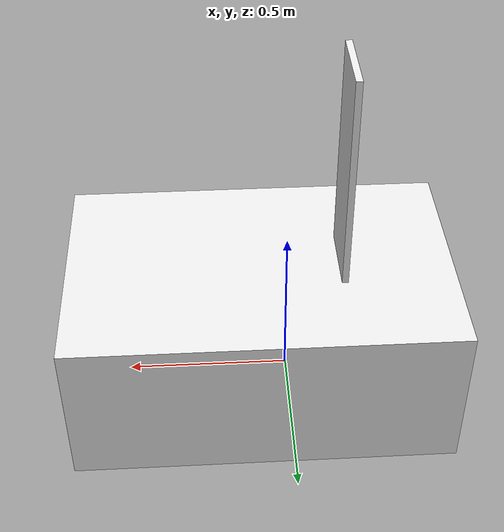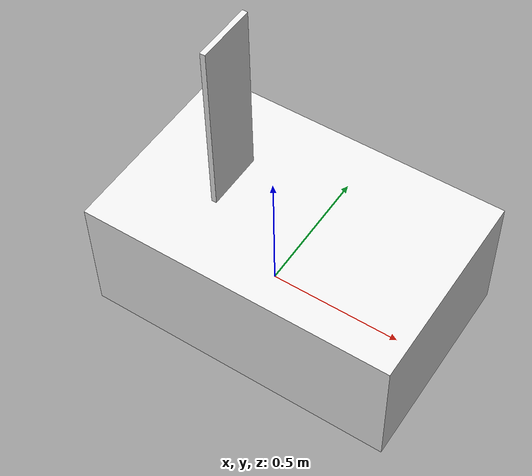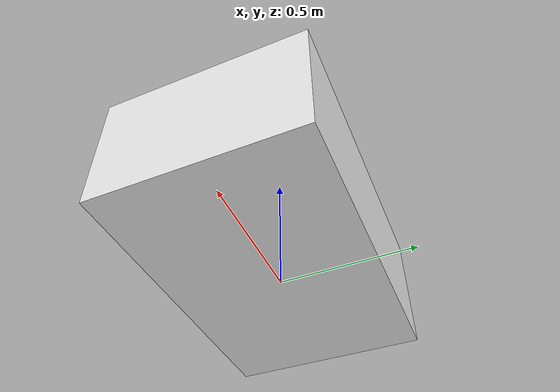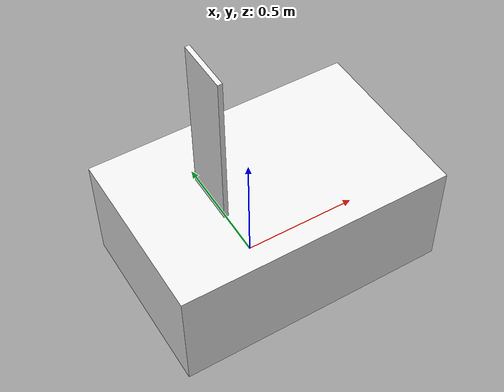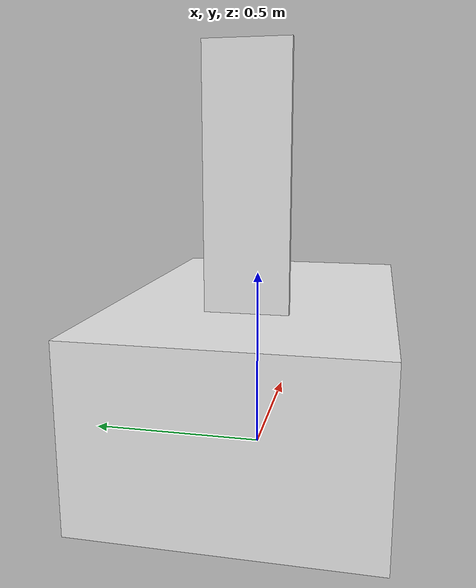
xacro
<?xml version="1.0"?>
<robot xmlns:xacro="https://www.ros.org/wiki/xacro">
  <!-- This file contains the core robot description -->
  <!-- This includes the frame of the robot and the wheels -->
  <!-- The robot is a differential drive robot with two wheels and a caster wheel -->

  <xacro:include filename="materials.xacro"/>
  <xacro:include filename="dimensions.xacro"/>
  <xacro:include filename="inertia_macros.xacro"/>

  <!-- BASE LINK -->

  <link name="base_link"/>

  <!-- BASE FOOTPRINT -->

  <link name="base_footprint"/>

  <joint name="base_footprint_joint" type="fixed">
    <parent link="base_link"/>
    <child link="base_footprint"/>
    <origin xyz="0 0 0" rpy="0 0 0"/>
  </joint>

  <!-- CHASSIS LINK -->

  <joint name="chassis_joint" type="fixed">
    <parent link="base_link"/>
    <child link="chassis_link"/>
    <origin xyz="${main_wheel_x_offset} 0 0" rpy="0 0 0"/>
  </joint>

  <link name="chassis_link">
    <visual>
      <origin xyz="${base_x_offset} 0 ${base_z_offset}" rpy="0 0 0"/>
      <geometry>
        <box size="${base_length} ${base_width} ${base_height}"/>
      </geometry>

      <material name="white"/>
    </visual>

    <collision>
      <origin xyz="${0 + (back_caster_x_offset / 4)} 0 ${back_caster_radius / 4}" rpy="0 0 0"/>
      <geometry>
        <box size="${base_length} ${base_width} ${base_height}"/>
      </geometry>
    </collision>

    <xacro:inertial_box mass="50.0" x="${base_length}" y="${base_width}" z="${base_height}">
      <origin xyz="0 0 0" rpy="0 0 0"/>
    </xacro:inertial_box>
  </link>

  <gazebo reference="chassis_link">
    <material name="white"/>
  </gazebo>

  <!-- TOWER LINK -->

  <joint name="tower_joint" type="fixed">
    <parent link="chassis_link"/>
    <child link="tower_link"/>
    <origin xyz="${tower_x_offset} 0 ${(base_z_offset / 2) + tower_z_offset}" rpy="0 0 0"/>
  </joint>

  <link name="tower_link">
    <visual>
      <origin xyz="0 0 0" rpy="0 0 0"/>
      <geometry>
        <box size="${tower_length} ${tower_width} ${tower_height}"/>
      </geometry>

      <material name="white"/>
    </visual>

    <collision>
      <origin xyz="0 0 0" rpy="0 0 0"/>
      <geometry>
        <box size="${tower_length} ${tower_width} ${tower_height}"/>
      </geometry>
    </collision>

    <xacro:inertial_box mass="5.0" x="${tower_length}" y="${tower_width}" z="${tower_height}">
      <origin xyz="0 0 0" rpy="0 0 0"/>
    </xacro:inertial_box>
  </link>

  <gazebo reference="tower_link">
    <material name="white"/>
  </gazebo>
</robot>

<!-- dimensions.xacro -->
<robot xmlns:xacro="https://www.ros.org/wiki/xacro">
  <!-- This file contains the dimensions of the robot -->
  <!-- The dimensions are defined in meters -->

  <!-- Real robot dimensions -->
  <!-- https://discord.com/channels/690363866437386281/879501498004946944/1508609648339583047 -->

  <!-- Convert mm to meters -->
  <xacro:property name="mm_to_m" value="${0.001}"/>
  <xacro:property name="cm_to_m" value="${0.01}"/>

  <!-- Convert inches to meters -->
  <xacro:property name="in_to_m" value="${0.0254}"/>

  <!-- Base Chassis Dimensions -->
  <xacro:property name="base_length" value="${45.5 * in_to_m}"/>
  <xacro:property name="base_width" value="${29.45 * in_to_m}"/>
  <xacro:property name="base_height" value="${18.75 * in_to_m}"/>

  <!-- Tower Dimensions -->
  <xacro:property name="tower_length" value="${0.75 * in_to_m}"/>
  <xacro:property name="tower_width" value="${8.625 * in_to_m}"/>
  <xacro:property name="tower_height" value="${26.25 * in_to_m}"/>

  <!-- Wheel Dimensions / Location -->
  <xacro:property name="main_wheel_diameter" value="${11.97 * in_to_m}"/>
  <xacro:property name="main_wheel_radius" value="${main_wheel_diameter / 2}"/>
  <xacro:property name="main_wheel_width" value="${48 * mm_to_m}"/>
  <xacro:property name="main_wheel_z_offset" value="${0.0}"/>
  <xacro:property name="main_wheel_y_offset" value="${((23.93 * in_to_m) - main_wheel_width) / 2}"/>
  <xacro:property name="main_wheel_x_offset" value="${0.0}"/>

  <!-- Caster Dimensions / Location -->
  <xacro:property name="front_caster_diameter" value="${20.32 * cm_to_m}"/>
  <xacro:property name="front_caster_radius" value="${front_caster_diameter / 2}"/>
  <xacro:property name="front_caster_width" value="${16 * mm_to_m}"/>
  <xacro:property name="front_caster_z_offset" value="${(16.51 * cm_to_m) - ((10.16 / 2) * cm_to_m)}"/>
  <xacro:property name="front_caster_y_offset" value="${22.225 * cm_to_m}"/>
  <xacro:property name="front_caster_x_offset" value="${53.975 * cm_to_m}"/>

  <xacro:property name="back_caster_diameter" value="${15.24 * cm_to_m}"/>
  <xacro:property name="back_caster_radius" value="${back_caster_diameter / 2}"/>
  <xacro:property name="back_caster_width" value="${16 * mm_to_m}"/>
  <xacro:property name="back_caster_z_offset" value="${(16.51 * cm_to_m) - ((7.62 / 2) * cm_to_m)}"/>
  <xacro:property name="back_caster_y_offset" value="${26.9875 * cm_to_m}"/>
  <xacro:property name="back_caster_x_offset" value="${33.02 * cm_to_m}"/>

  <!-- Lidar Dimensions -->
  <xacro:property name="lidar_height" value="${71.7 * mm_to_m}"/>
  <xacro:property name="lidar_radius" value="${103.3 * mm_to_m / 2}"/>

  <!-- GPS Dimensions -->
  <xacro:property name="gps_height" value="${20 * mm_to_m}"/>
  <xacro:property name="gps_radius" value="${50 * mm_to_m / 2}"/>

  <!-- TODO add IMU dimensions and offsets -->

  <!-- Assorted Offset Values -->
  <xacro:property name="base_x_offset" value="${(back_caster_x_offset / 4)}"/>
  <xacro:property name="base_z_offset" value="${7.375 * in_to_m}"/>
  <xacro:property name="tower_x_offset" value="${(-base_length / 2) + base_x_offset + (tower_length / 2) + (12.75 * in_to_m)}"/>
  <xacro:property name="tower_z_offset" value="${base_height + base_z_offset}"/>
  <xacro:property name="lidar_x_offset" value="${(base_length / 2) - (lidar_radius / 2) + (base_x_offset / 2)}"/>
  <xacro:property name="lidar_z_offset" value="${(base_height / 2) + (lidar_height / 2) + base_z_offset}"/>
  <xacro:property name="gps_x_offset" value="${0}"/>
  <xacro:property name="gps_z_offset" value="${(base_height / 2) + (gps_height / 2) + base_z_offset}"/>
</robot>
